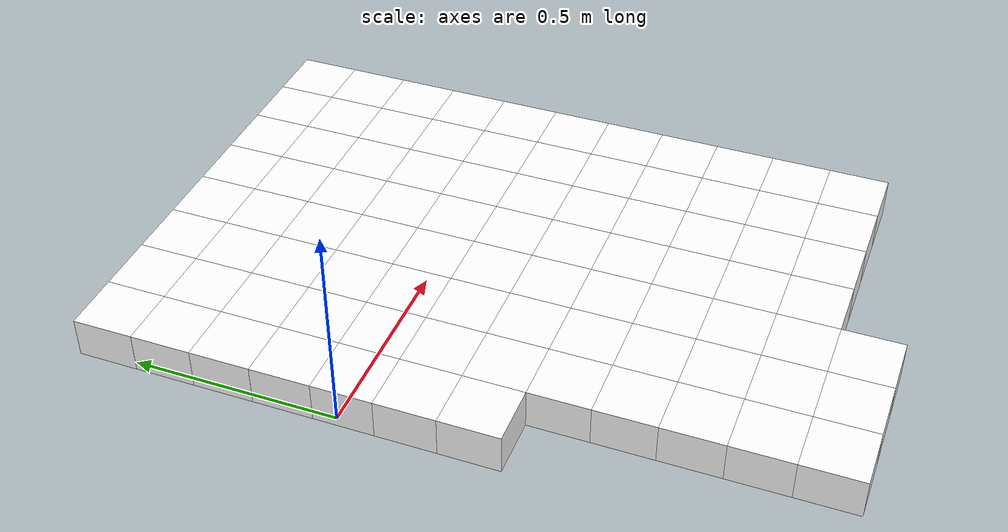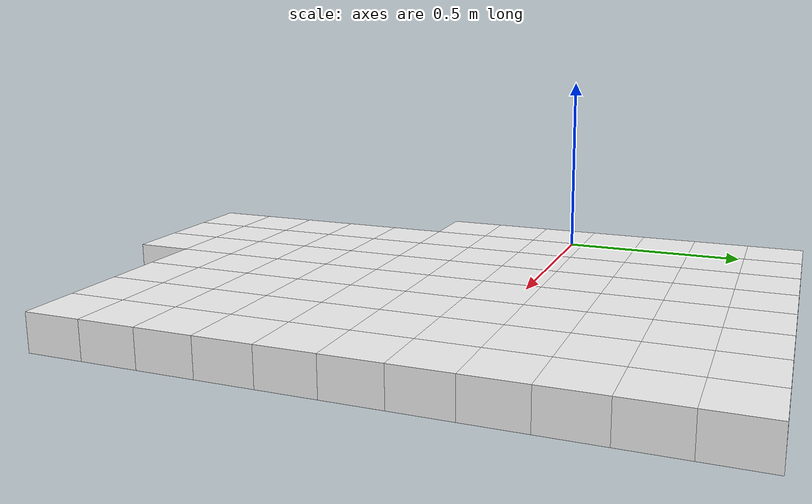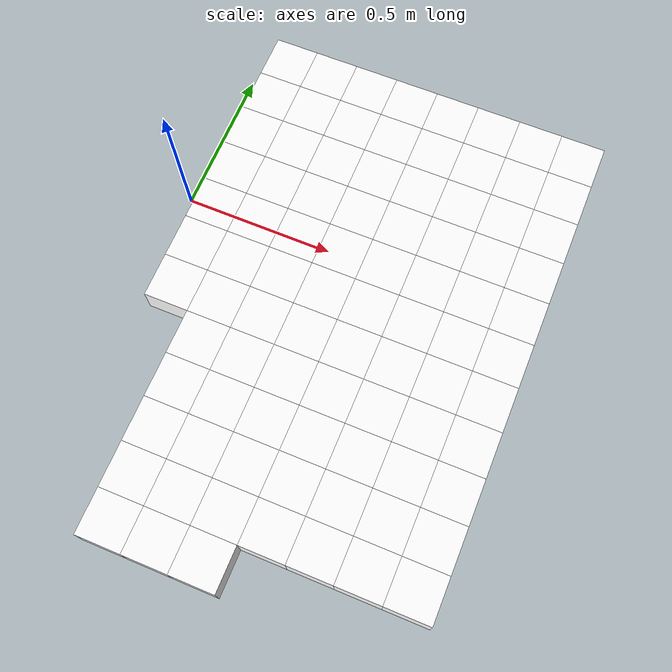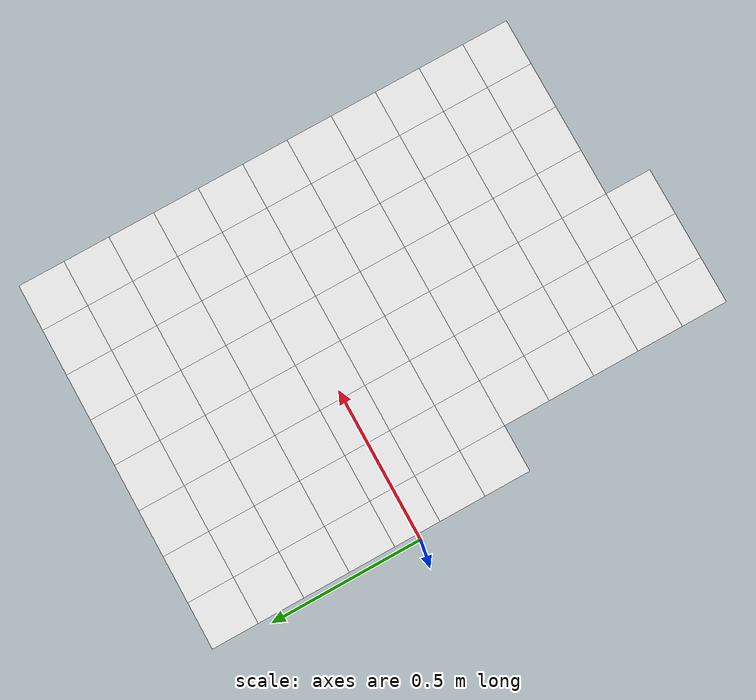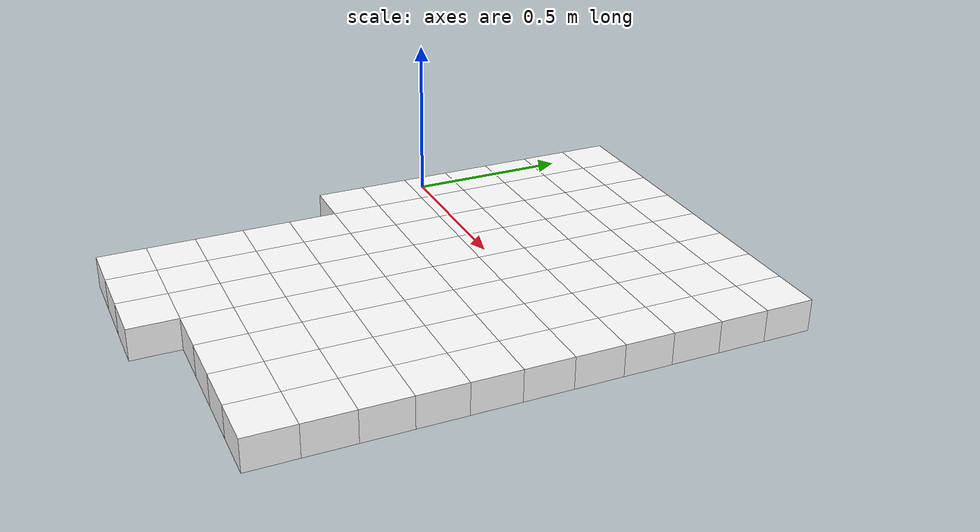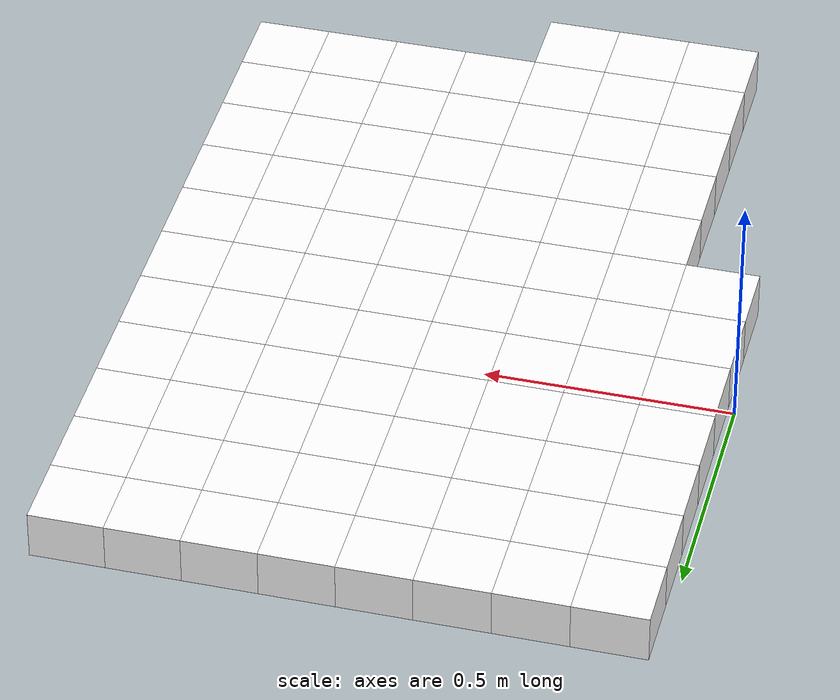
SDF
<sdf version="1.7">
 <world name="default">
  <include><uri>model://sun</uri></include>
  <model name="static_environment">
   <static>true</static>
   <link name="region_280">
    <pose>0.099999991686615 0.5998131411923977 0.0 0.0 0.0 4.7123</pose>
    <collision name="region_280_collision">
     <geometry><box><size>0.15 0.15 0.1</size></box></geometry>
     <surface><friction><ode><mu>1.0</mu><mu2>1.0</mu2></ode></friction></surface>
    </collision>
    <visual name="region_280_visual">
     <geometry><box><size>0.15 0.15 0.1</size></box></geometry>
     <material><ambient>1.0 1.0 1.0 1.0</ambient><diffuse>1.0 1.0 1.0 1.0</diffuse></material>
    </visual>
   </link>
   <link name="region_281">
    <pose>0.09998664462892926 0.4498131417862109 0.0 0.0 0.0 4.7123</pose>
    <collision name="region_281_collision">
     <geometry><box><size>0.15 0.15 0.1</size></box></geometry>
     <surface><friction><ode><mu>1.0</mu><mu2>1.0</mu2></ode></friction></surface>
    </collision>
    <visual name="region_281_visual">
     <geometry><box><size>0.15 0.15 0.1</size></box></geometry>
     <material><ambient>1.0 1.0 1.0 1.0</ambient><diffuse>1.0 1.0 1.0 1.0</diffuse></material>
    </visual>
   </link>
   <link name="region_282">
    <pose>0.09997329757124307 0.2998131423800241 0.0 0.0 0.0 4.7123</pose>
    <collision name="region_282_collision">
     <geometry><box><size>0.15 0.15 0.1</size></box></geometry>
     <surface><friction><ode><mu>1.0</mu><mu2>1.0</mu2></ode></friction></surface>
    </collision>
    <visual name="region_282_visual">
     <geometry><box><size>0.15 0.15 0.1</size></box></geometry>
     <material><ambient>1.0 1.0 1.0 1.0</ambient><diffuse>1.0 1.0 1.0 1.0</diffuse></material>
    </visual>
   </link>
   <link name="region_283">
    <pose>0.09995995051355733 0.1498131429738373 0.0 0.0 0.0 4.7123</pose>
    <collision name="region_283_collision">
     <geometry><box><size>0.15 0.15 0.1</size></box></geometry>
     <surface><friction><ode><mu>1.0</mu><mu2>1.0</mu2></ode></friction></surface>
    </collision>
    <visual name="region_283_visual">
     <geometry><box><size>0.15 0.15 0.1</size></box></geometry>
     <material><ambient>1.0 1.0 1.0 1.0</ambient><diffuse>1.0 1.0 1.0 1.0</diffuse></material>
    </visual>
   </link>
   <link name="region_284">
    <pose>0.09994660345587159 -0.00018685643234950255 0.0 0.0 0.0 4.7123</pose>
    <collision name="region_284_collision">
     <geometry><box><size>0.15 0.15 0.1</size></box></geometry>
     <surface><friction><ode><mu>1.0</mu><mu2>1.0</mu2></ode></friction></surface>
    </collision>
    <visual name="region_284_visual">
     <geometry><box><size>0.15 0.15 0.1</size></box></geometry>
     <material><ambient>1.0 1.0 1.0 1.0</ambient><diffuse>1.0 1.0 1.0 1.0</diffuse></material>
    </visual>
   </link>
   <link name="region_285">
    <pose>0.0999332563981854 -0.15018685583853641 0.0 0.0 0.0 4.7123</pose>
    <collision name="region_285_collision">
     <geometry><box><size>0.15 0.15 0.1</size></box></geometry>
     <surface><friction><ode><mu>1.0</mu><mu2>1.0</mu2></ode></friction></surface>
    </collision>
    <visual name="region_285_visual">
     <geometry><box><size>0.15 0.15 0.1</size></box></geometry>
     <material><ambient>1.0 1.0 1.0 1.0</ambient><diffuse>1.0 1.0 1.0 1.0</diffuse></material>
    </visual>
   </link>
   <link name="region_286">
    <pose>0.09991990934049966 -0.3001868552447232 0.0 0.0 0.0 4.7123</pose>
    <collision name="region_286_collision">
     <geometry><box><size>0.15 0.15 0.1</size></box></geometry>
     <surface><friction><ode><mu>1.0</mu><mu2>1.0</mu2></ode></friction></surface>
    </collision>
    <visual name="region_286_visual">
     <geometry><box><size>0.15 0.15 0.1</size></box></geometry>
     <material><ambient>1.0 1.0 1.0 1.0</ambient><diffuse>1.0 1.0 1.0 1.0</diffuse></material>
    </visual>
   </link>
   <link name="region_300">
    <pose>0.2499999910928019 0.5997997941347119 0.0 0.0 0.0 4.7123</pose>
    <collision name="region_300_collision">
     <geometry><box><size>0.15 0.15 0.1</size></box></geometry>
     <surface><friction><ode><mu>1.0</mu><mu2>1.0</mu2></ode></friction></surface>
    </collision>
    <visual name="region_300_visual">
     <geometry><box><size>0.15 0.15 0.1</size></box></geometry>
     <material><ambient>1.0 1.0 1.0 1.0</ambient><diffuse>1.0 1.0 1.0 1.0</diffuse></material>
    </visual>
   </link>
   <link name="region_301">
    <pose>0.24998664403511617 0.44979979472852505 0.0 0.0 0.0 4.7123</pose>
    <collision name="region_301_collision">
     <geometry><box><size>0.15 0.15 0.1</size></box></geometry>
     <surface><friction><ode><mu>1.0</mu><mu2>1.0</mu2></ode></friction></surface>
    </collision>
    <visual name="region_301_visual">
     <geometry><box><size>0.15 0.15 0.1</size></box></geometry>
     <material><ambient>1.0 1.0 1.0 1.0</ambient><diffuse>1.0 1.0 1.0 1.0</diffuse></material>
    </visual>
   </link>
   <link name="region_302">
    <pose>0.24997329697742998 0.2997997953223382 0.0 0.0 0.0 4.7123</pose>
    <collision name="region_302_collision">
     <geometry><box><size>0.15 0.15 0.1</size></box></geometry>
     <surface><friction><ode><mu>1.0</mu><mu2>1.0</mu2></ode></friction></surface>
    </collision>
    <visual name="region_302_visual">
     <geometry><box><size>0.15 0.15 0.1</size></box></geometry>
     <material><ambient>1.0 1.0 1.0 1.0</ambient><diffuse>1.0 1.0 1.0 1.0</diffuse></material>
    </visual>
   </link>
   <link name="region_303">
    <pose>0.24995994991974424 0.14979979591615145 0.0 0.0 0.0 4.7123</pose>
    <collision name="region_303_collision">
     <geometry><box><size>0.15 0.15 0.1</size></box></geometry>
     <surface><friction><ode><mu>1.0</mu><mu2>1.0</mu2></ode></friction></surface>
    </collision>
    <visual name="region_303_visual">
     <geometry><box><size>0.15 0.15 0.1</size></box></geometry>
     <material><ambient>1.0 1.0 1.0 1.0</ambient><diffuse>1.0 1.0 1.0 1.0</diffuse></material>
    </visual>
   </link>
   <link name="region_304">
    <pose>0.2499466028620585 -0.00020020349003546656 0.0 0.0 0.0 4.7123</pose>
    <collision name="region_304_collision">
     <geometry><box><size>0.15 0.15 0.1</size></box></geometry>
     <surface><friction><ode><mu>1.0</mu><mu2>1.0</mu2></ode></friction></surface>
    </collision>
    <visual name="region_304_visual">
     <geometry><box><size>0.15 0.15 0.1</size></box></geometry>
     <material><ambient>1.0 1.0 1.0 1.0</ambient><diffuse>1.0 1.0 1.0 1.0</diffuse></material>
    </visual>
   </link>
   <link name="region_305">
    <pose>0.2499332558043723 -0.15020020289622227 0.0 0.0 0.0 4.7123</pose>
    <collision name="region_305_collision">
     <geometry><box><size>0.15 0.15 0.1</size></box></geometry>
     <surface><friction><ode><mu>1.0</mu><mu2>1.0</mu2></ode></friction></surface>
    </collision>
    <visual name="region_305_visual">
     <geometry><box><size>0.15 0.15 0.1</size></box></geometry>
     <material><ambient>1.0 1.0 1.0 1.0</ambient><diffuse>1.0 1.0 1.0 1.0</diffuse></material>
    </visual>
   </link>
   <link name="region_306">
    <pose>0.24991990874668657 -0.30020020230240907 0.0 0.0 0.0 4.7123</pose>
    <collision name="region_306_collision">
     <geometry><box><size>0.15 0.15 0.1</size></box></geometry>
     <surface><friction><ode><mu>1.0</mu><mu2>1.0</mu2></ode></friction></surface>
    </collision>
    <visual name="region_306_visual">
     <geometry><box><size>0.15 0.15 0.1</size></box></geometry>
     <material><ambient>1.0 1.0 1.0 1.0</ambient><diffuse>1.0 1.0 1.0 1.0</diffuse></material>
    </visual>
   </link>
   <link name="region_307">
    <pose>0.24990656168900083 -0.45020020170859587 0.0 0.0 0.0 4.7123</pose>
    <collision name="region_307_collision">
     <geometry><box><size>0.15 0.15 0.1</size></box></geometry>
     <surface><friction><ode><mu>1.0</mu><mu2>1.0</mu2></ode></friction></surface>
    </collision>
    <visual name="region_307_visual">
     <geometry><box><size>0.15 0.15 0.1</size></box></geometry>
     <material><ambient>1.0 1.0 1.0 1.0</ambient><diffuse>1.0 1.0 1.0 1.0</diffuse></material>
    </visual>
   </link>
   <link name="region_308">
    <pose>0.24989321463131509 -0.6002002011147826 0.0 0.0 0.0 4.7123</pose>
    <collision name="region_308_collision">
     <geometry><box><size>0.15 0.15 0.1</size></box></geometry>
     <surface><friction><ode><mu>1.0</mu><mu2>1.0</mu2></ode></friction></surface>
    </collision>
    <visual name="region_308_visual">
     <geometry><box><size>0.15 0.15 0.1</size></box></geometry>
     <material><ambient>1.0 1.0 1.0 1.0</ambient><diffuse>1.0 1.0 1.0 1.0</diffuse></material>
    </visual>
   </link>
   <link name="region_309">
    <pose>0.2498798675736289 -0.7502002005209695 0.0 0.0 0.0 4.7123</pose>
    <collision name="region_309_collision">
     <geometry><box><size>0.15 0.15 0.1</size></box></geometry>
     <surface><friction><ode><mu>1.0</mu><mu2>1.0</mu2></ode></friction></surface>
    </collision>
    <visual name="region_309_visual">
     <geometry><box><size>0.15 0.15 0.1</size></box></geometry>
     <material><ambient>1.0 1.0 1.0 1.0</ambient><diffuse>1.0 1.0 1.0 1.0</diffuse></material>
    </visual>
   </link>
   <link name="region_310">
    <pose>0.24986652051594316 -0.9002001999271562 0.0 0.0 0.0 4.7123</pose>
    <collision name="region_310_collision">
     <geometry><box><size>0.15 0.15 0.1</size></box></geometry>
     <surface><friction><ode><mu>1.0</mu><mu2>1.0</mu2></ode></friction></surface>
    </collision>
    <visual name="region_310_visual">
     <geometry><box><size>0.15 0.15 0.1</size></box></geometry>
     <material><ambient>1.0 1.0 1.0 1.0</ambient><diffuse>1.0 1.0 1.0 1.0</diffuse></material>
    </visual>
   </link>
   <link name="region_311">
    <pose>0.24985317345825742 -1.050200199333343 0.0 0.0 0.0 4.7123</pose>
    <collision name="region_311_collision">
     <geometry><box><size>0.15 0.15 0.1</size></box></geometry>
     <surface><friction><ode><mu>1.0</mu><mu2>1.0</mu2></ode></friction></surface>
    </collision>
    <visual name="region_311_visual">
     <geometry><box><size>0.15 0.15 0.1</size></box></geometry>
     <material><ambient>1.0 1.0 1.0 1.0</ambient><diffuse>1.0 1.0 1.0 1.0</diffuse></material>
    </visual>
   </link>
   <link name="region_320">
    <pose>0.3999999904989884 0.599786447077026 0.0 0.0 0.0 4.7123</pose>
    <collision name="region_320_collision">
     <geometry><box><size>0.15 0.15 0.1</size></box></geometry>
     <surface><friction><ode><mu>1.0</mu><mu2>1.0</mu2></ode></friction></surface>
    </collision>
    <visual name="region_320_visual">
     <geometry><box><size>0.15 0.15 0.1</size></box></geometry>
     <material><ambient>1.0 1.0 1.0 1.0</ambient><diffuse>1.0 1.0 1.0 1.0</diffuse></material>
    </visual>
   </link>
   <link name="region_321">
    <pose>0.39998664344130264 0.44978644767083914 0.0 0.0 0.0 4.7123</pose>
    <collision name="region_321_collision">
     <geometry><box><size>0.15 0.15 0.1</size></box></geometry>
     <surface><friction><ode><mu>1.0</mu><mu2>1.0</mu2></ode></friction></surface>
    </collision>
    <visual name="region_321_visual">
     <geometry><box><size>0.15 0.15 0.1</size></box></geometry>
     <material><ambient>1.0 1.0 1.0 1.0</ambient><diffuse>1.0 1.0 1.0 1.0</diffuse></material>
    </visual>
   </link>
   <link name="region_322">
    <pose>0.39997329638361645 0.29978644826465234 0.0 0.0 0.0 4.7123</pose>
    <collision name="region_322_collision">
     <geometry><box><size>0.15 0.15 0.1</size></box></geometry>
     <surface><friction><ode><mu>1.0</mu><mu2>1.0</mu2></ode></friction></surface>
    </collision>
    <visual name="region_322_visual">
     <geometry><box><size>0.15 0.15 0.1</size></box></geometry>
     <material><ambient>1.0 1.0 1.0 1.0</ambient><diffuse>1.0 1.0 1.0 1.0</diffuse></material>
    </visual>
   </link>
   <link name="region_323">
    <pose>0.3999599493259307 0.14978644885846554 0.0 0.0 0.0 4.7123</pose>
    <collision name="region_323_collision">
     <geometry><box><size>0.15 0.15 0.1</size></box></geometry>
     <surface><friction><ode><mu>1.0</mu><mu2>1.0</mu2></ode></friction></surface>
    </collision>
    <visual name="region_323_visual">
     <geometry><box><size>0.15 0.15 0.1</size></box></geometry>
     <material><ambient>1.0 1.0 1.0 1.0</ambient><diffuse>1.0 1.0 1.0 1.0</diffuse></material>
    </visual>
   </link>
   <link name="region_324">
    <pose>0.39994660226824497 -0.00021355054772131954 0.0 0.0 0.0 4.7123</pose>
    <collision name="region_324_collision">
     <geometry><box><size>0.15 0.15 0.1</size></box></geometry>
     <surface><friction><ode><mu>1.0</mu><mu2>1.0</mu2></ode></friction></surface>
    </collision>
    <visual name="region_324_visual">
     <geometry><box><size>0.15 0.15 0.1</size></box></geometry>
     <material><ambient>1.0 1.0 1.0 1.0</ambient><diffuse>1.0 1.0 1.0 1.0</diffuse></material>
    </visual>
   </link>
   <link name="region_325">
    <pose>0.3999332552105588 -0.15021354995390812 0.0 0.0 0.0 4.7123</pose>
    <collision name="region_325_collision">
     <geometry><box><size>0.15 0.15 0.1</size></box></geometry>
     <surface><friction><ode><mu>1.0</mu><mu2>1.0</mu2></ode></friction></surface>
    </collision>
    <visual name="region_325_visual">
     <geometry><box><size>0.15 0.15 0.1</size></box></geometry>
     <material><ambient>1.0 1.0 1.0 1.0</ambient><diffuse>1.0 1.0 1.0 1.0</diffuse></material>
    </visual>
   </link>
   <link name="region_326">
    <pose>0.39991990815287304 -0.3002135493600949 0.0 0.0 0.0 4.7123</pose>
    <collision name="region_326_collision">
     <geometry><box><size>0.15 0.15 0.1</size></box></geometry>
     <surface><friction><ode><mu>1.0</mu><mu2>1.0</mu2></ode></friction></surface>
    </collision>
    <visual name="region_326_visual">
     <geometry><box><size>0.15 0.15 0.1</size></box></geometry>
     <material><ambient>1.0 1.0 1.0 1.0</ambient><diffuse>1.0 1.0 1.0 1.0</diffuse></material>
    </visual>
   </link>
   <link name="region_327">
    <pose>0.3999065610951873 -0.45021354876628183 0.0 0.0 0.0 4.7123</pose>
    <collision name="region_327_collision">
     <geometry><box><size>0.15 0.15 0.1</size></box></geometry>
     <surface><friction><ode><mu>1.0</mu><mu2>1.0</mu2></ode></friction></surface>
    </collision>
    <visual name="region_327_visual">
     <geometry><box><size>0.15 0.15 0.1</size></box></geometry>
     <material><ambient>1.0 1.0 1.0 1.0</ambient><diffuse>1.0 1.0 1.0 1.0</diffuse></material>
    </visual>
   </link>
   <link name="region_328">
    <pose>0.39989321403750155 -0.6002135481724685 0.0 0.0 0.0 4.7123</pose>
    <collision name="region_328_collision">
     <geometry><box><size>0.15 0.15 0.1</size></box></geometry>
     <surface><friction><ode><mu>1.0</mu><mu2>1.0</mu2></ode></friction></surface>
    </collision>
    <visual name="region_328_visual">
     <geometry><box><size>0.15 0.15 0.1</size></box></geometry>
     <material><ambient>1.0 1.0 1.0 1.0</ambient><diffuse>1.0 1.0 1.0 1.0</diffuse></material>
    </visual>
   </link>
   <link name="region_329">
    <pose>0.39987986697981537 -0.7502135475786552 0.0 0.0 0.0 4.7123</pose>
    <collision name="region_329_collision">
     <geometry><box><size>0.15 0.15 0.1</size></box></geometry>
     <surface><friction><ode><mu>1.0</mu><mu2>1.0</mu2></ode></friction></surface>
    </collision>
    <visual name="region_329_visual">
     <geometry><box><size>0.15 0.15 0.1</size></box></geometry>
     <material><ambient>1.0 1.0 1.0 1.0</ambient><diffuse>1.0 1.0 1.0 1.0</diffuse></material>
    </visual>
   </link>
   <link name="region_330">
    <pose>0.3998665199221296 -0.9002135469848419 0.0 0.0 0.0 4.7123</pose>
    <collision name="region_330_collision">
     <geometry><box><size>0.15 0.15 0.1</size></box></geometry>
     <surface><friction><ode><mu>1.0</mu><mu2>1.0</mu2></ode></friction></surface>
    </collision>
    <visual name="region_330_visual">
     <geometry><box><size>0.15 0.15 0.1</size></box></geometry>
     <material><ambient>1.0 1.0 1.0 1.0</ambient><diffuse>1.0 1.0 1.0 1.0</diffuse></material>
    </visual>
   </link>
   <link name="region_331">
    <pose>0.3998531728644439 -1.0502135463910287 0.0 0.0 0.0 4.7123</pose>
    <collision name="region_331_collision">
     <geometry><box><size>0.15 0.15 0.1</size></box></geometry>
     <surface><friction><ode><mu>1.0</mu><mu2>1.0</mu2></ode></friction></surface>
    </collision>
    <visual name="region_331_visual">
     <geometry><box><size>0.15 0.15 0.1</size></box></geometry>
     <material><ambient>1.0 1.0 1.0 1.0</ambient><diffuse>1.0 1.0 1.0 1.0</diffuse></material>
    </visual>
   </link>
   <link name="region_340">
    <pose>0.5499999899051753 0.59977310001934 0.0 0.0 0.0 4.7123</pose>
    <collision name="region_340_collision">
     <geometry><box><size>0.15 0.15 0.1</size></box></geometry>
     <surface><friction><ode><mu>1.0</mu><mu2>1.0</mu2></ode></friction></surface>
    </collision>
    <visual name="region_340_visual">
     <geometry><box><size>0.15 0.15 0.1</size></box></geometry>
     <material><ambient>1.0 1.0 1.0 1.0</ambient><diffuse>1.0 1.0 1.0 1.0</diffuse></material>
    </visual>
   </link>
   <link name="region_341">
    <pose>0.5499866428474895 0.44977310061315323 0.0 0.0 0.0 4.7123</pose>
    <collision name="region_341_collision">
     <geometry><box><size>0.15 0.15 0.1</size></box></geometry>
     <surface><friction><ode><mu>1.0</mu><mu2>1.0</mu2></ode></friction></surface>
    </collision>
    <visual name="region_341_visual">
     <geometry><box><size>0.15 0.15 0.1</size></box></geometry>
     <material><ambient>1.0 1.0 1.0 1.0</ambient><diffuse>1.0 1.0 1.0 1.0</diffuse></material>
    </visual>
   </link>
   <link name="region_342">
    <pose>0.5499732957898034 0.2997731012069665 0.0 0.0 0.0 4.7123</pose>
    <collision name="region_342_collision">
     <geometry><box><size>0.15 0.15 0.1</size></box></geometry>
     <surface><friction><ode><mu>1.0</mu><mu2>1.0</mu2></ode></friction></surface>
    </collision>
    <visual name="region_342_visual">
     <geometry><box><size>0.15 0.15 0.1</size></box></geometry>
     <material><ambient>1.0 1.0 1.0 1.0</ambient><diffuse>1.0 1.0 1.0 1.0</diffuse></material>
    </visual>
   </link>
   <link name="region_343">
    <pose>0.5499599487321176 0.14977310180077968 0.0 0.0 0.0 4.7123</pose>
    <collision name="region_343_collision">
     <geometry><box><size>0.15 0.15 0.1</size></box></geometry>
     <surface><friction><ode><mu>1.0</mu><mu2>1.0</mu2></ode></friction></surface>
    </collision>
    <visual name="region_343_visual">
     <geometry><box><size>0.15 0.15 0.1</size></box></geometry>
     <material><ambient>1.0 1.0 1.0 1.0</ambient><diffuse>1.0 1.0 1.0 1.0</diffuse></material>
    </visual>
   </link>
   <link name="region_344">
    <pose>0.5499466016744319 -0.00022689760540717252 0.0 0.0 0.0 4.7123</pose>
    <collision name="region_344_collision">
     <geometry><box><size>0.15 0.15 0.1</size></box></geometry>
     <surface><friction><ode><mu>1.0</mu><mu2>1.0</mu2></ode></friction></surface>
    </collision>
    <visual name="region_344_visual">
     <geometry><box><size>0.15 0.15 0.1</size></box></geometry>
     <material><ambient>1.0 1.0 1.0 1.0</ambient><diffuse>1.0 1.0 1.0 1.0</diffuse></material>
    </visual>
   </link>
   <link name="region_345">
    <pose>0.5499332546167457 -0.15022689701159397 0.0 0.0 0.0 4.7123</pose>
    <collision name="region_345_collision">
     <geometry><box><size>0.15 0.15 0.1</size></box></geometry>
     <surface><friction><ode><mu>1.0</mu><mu2>1.0</mu2></ode></friction></surface>
    </collision>
    <visual name="region_345_visual">
     <geometry><box><size>0.15 0.15 0.1</size></box></geometry>
     <material><ambient>1.0 1.0 1.0 1.0</ambient><diffuse>1.0 1.0 1.0 1.0</diffuse></material>
    </visual>
   </link>
   <link name="region_346">
    <pose>0.54991990755906 -0.3002268964177809 0.0 0.0 0.0 4.7123</pose>
    <collision name="region_346_collision">
     <geometry><box><size>0.15 0.15 0.1</size></box></geometry>
     <surface><friction><ode><mu>1.0</mu><mu2>1.0</mu2></ode></friction></surface>
    </collision>
    <visual name="region_346_visual">
     <geometry><box><size>0.15 0.15 0.1</size></box></geometry>
     <material><ambient>1.0 1.0 1.0 1.0</ambient><diffuse>1.0 1.0 1.0 1.0</diffuse></material>
    </visual>
   </link>
   <link name="region_347">
    <pose>0.5499065605013742 -0.4502268958239676 0.0 0.0 0.0 4.7123</pose>
    <collision name="region_347_collision">
     <geometry><box><size>0.15 0.15 0.1</size></box></geometry>
     <surface><friction><ode><mu>1.0</mu><mu2>1.0</mu2></ode></friction></surface>
    </collision>
    <visual name="region_347_visual">
     <geometry><box><size>0.15 0.15 0.1</size></box></geometry>
     <material><ambient>1.0 1.0 1.0 1.0</ambient><diffuse>1.0 1.0 1.0 1.0</diffuse></material>
    </visual>
   </link>
   <link name="region_348">
    <pose>0.5498932134436885 -0.6002268952301545 0.0 0.0 0.0 4.7123</pose>
    <collision name="region_348_collision">
     <geometry><box><size>0.15 0.15 0.1</size></box></geometry>
     <surface><friction><ode><mu>1.0</mu><mu2>1.0</mu2></ode></friction></surface>
    </collision>
    <visual name="region_348_visual">
     <geometry><box><size>0.15 0.15 0.1</size></box></geometry>
     <material><ambient>1.0 1.0 1.0 1.0</ambient><diffuse>1.0 1.0 1.0 1.0</diffuse></material>
    </visual>
   </link>
   <link name="region_349">
    <pose>0.5498798663860023 -0.7502268946363412 0.0 0.0 0.0 4.7123</pose>
    <collision name="region_349_collision">
     <geometry><box><size>0.15 0.15 0.1</size></box></geometry>
     <surface><friction><ode><mu>1.0</mu><mu2>1.0</mu2></ode></friction></surface>
    </collision>
    <visual name="region_349_visual">
     <geometry><box><size>0.15 0.15 0.1</size></box></geometry>
     <material><ambient>1.0 1.0 1.0 1.0</ambient><diffuse>1.0 1.0 1.0 1.0</diffuse></material>
    </visual>
   </link>
   <link name="region_350">
    <pose>0.5498665193283165 -0.9002268940425279 0.0 0.0 0.0 4.7123</pose>
    <collision name="region_350_collision">
     <geometry><box><size>0.15 0.15 0.1</size></box></geometry>
     <surface><friction><ode><mu>1.0</mu><mu2>1.0</mu2></ode></friction></surface>
    </collision>
    <visual name="region_350_visual">
     <geometry><box><size>0.15 0.15 0.1</size></box></geometry>
     <material><ambient>1.0 1.0 1.0 1.0</ambient><diffuse>1.0 1.0 1.0 1.0</diffuse></material>
    </visual>
   </link>
   <link name="region_351">
    <pose>0.5498531722706308 -1.0502268934487144 0.0 0.0 0.0 4.7123</pose>
    <collision name="region_351_collision">
     <geometry><box><size>0.15 0.15 0.1</size></box></geometry>
     <surface><friction><ode><mu>1.0</mu><mu2>1.0</mu2></ode></friction></surface>
    </collision>
    <visual name="region_351_visual">
     <geometry><box><size>0.15 0.15 0.1</size></box></geometry>
     <material><ambient>1.0 1.0 1.0 1.0</ambient><diffuse>1.0 1.0 1.0 1.0</diffuse></material>
    </visual>
   </link>
   <link name="region_360">
    <pose>0.6999999893113622 0.5997597529616542 0.0 0.0 0.0 4.7123</pose>
    <collision name="region_360_collision">
     <geometry><box><size>0.15 0.15 0.1</size></box></geometry>
     <surface><friction><ode><mu>1.0</mu><mu2>1.0</mu2></ode></friction></surface>
    </collision>
    <visual name="region_360_visual">
     <geometry><box><size>0.15 0.15 0.1</size></box></geometry>
     <material><ambient>1.0 1.0 1.0 1.0</ambient><diffuse>1.0 1.0 1.0 1.0</diffuse></material>
    </visual>
   </link>
   <link name="region_361">
    <pose>0.6999866422536765 0.4497597535554674 0.0 0.0 0.0 4.7123</pose>
    <collision name="region_361_collision">
     <geometry><box><size>0.15 0.15 0.1</size></box></geometry>
     <surface><friction><ode><mu>1.0</mu><mu2>1.0</mu2></ode></friction></surface>
    </collision>
    <visual name="region_361_visual">
     <geometry><box><size>0.15 0.15 0.1</size></box></geometry>
     <material><ambient>1.0 1.0 1.0 1.0</ambient><diffuse>1.0 1.0 1.0 1.0</diffuse></material>
    </visual>
   </link>
   <link name="region_362">
    <pose>0.6999732951959903 0.2997597541492806 0.0 0.0 0.0 4.7123</pose>
    <collision name="region_362_collision">
     <geometry><box><size>0.15 0.15 0.1</size></box></geometry>
     <surface><friction><ode><mu>1.0</mu><mu2>1.0</mu2></ode></friction></surface>
    </collision>
    <visual name="region_362_visual">
     <geometry><box><size>0.15 0.15 0.1</size></box></geometry>
     <material><ambient>1.0 1.0 1.0 1.0</ambient><diffuse>1.0 1.0 1.0 1.0</diffuse></material>
    </visual>
   </link>
   <link name="region_363">
    <pose>0.6999599481383045 0.14975975474309378 0.0 0.0 0.0 4.7123</pose>
    <collision name="region_363_collision">
     <geometry><box><size>0.15 0.15 0.1</size></box></geometry>
     <surface><friction><ode><mu>1.0</mu><mu2>1.0</mu2></ode></friction></surface>
    </collision>
    <visual name="region_363_visual">
     <geometry><box><size>0.15 0.15 0.1</size></box></geometry>
     <material><ambient>1.0 1.0 1.0 1.0</ambient><diffuse>1.0 1.0 1.0 1.0</diffuse></material>
    </visual>
   </link>
   <link name="region_364">
    <pose>0.6999466010806188 -0.0002402446630930255 0.0 0.0 0.0 4.7123</pose>
    <collision name="region_364_collision">
     <geometry><box><size>0.15 0.15 0.1</size></box></geometry>
     <surface><friction><ode><mu>1.0</mu><mu2>1.0</mu2></ode></friction></surface>
    </collision>
    <visual name="region_364_visual">
     <geometry><box><size>0.15 0.15 0.1</size></box></geometry>
     <material><ambient>1.0 1.0 1.0 1.0</ambient><diffuse>1.0 1.0 1.0 1.0</diffuse></material>
    </visual>
   </link>
   <link name="region_365">
    <pose>0.6999332540229326 -0.15024024406927983 0.0 0.0 0.0 4.7123</pose>
    <collision name="region_365_collision">
     <geometry><box><size>0.15 0.15 0.1</size></box></geometry>
     <surface><friction><ode><mu>1.0</mu><mu2>1.0</mu2></ode></friction></surface>
    </collision>
    <visual name="region_365_visual">
     <geometry><box><size>0.15 0.15 0.1</size></box></geometry>
     <material><ambient>1.0 1.0 1.0 1.0</ambient><diffuse>1.0 1.0 1.0 1.0</diffuse></material>
    </visual>
   </link>
   <link name="region_366">
    <pose>0.6999199069652469 -0.30024024347546674 0.0 0.0 0.0 4.7123</pose>
    <collision name="region_366_collision">
     <geometry><box><size>0.15 0.15 0.1</size></box></geometry>
     <surface><friction><ode><mu>1.0</mu><mu2>1.0</mu2></ode></friction></surface>
    </collision>
    <visual name="region_366_visual">
     <geometry><box><size>0.15 0.15 0.1</size></box></geometry>
     <material><ambient>1.0 1.0 1.0 1.0</ambient><diffuse>1.0 1.0 1.0 1.0</diffuse></material>
    </visual>
   </link>
   <link name="region_367">
    <pose>0.6999065599075611 -0.45024024288165354 0.0 0.0 0.0 4.7123</pose>
    <collision name="region_367_collision">
     <geometry><box><size>0.15 0.15 0.1</size></box></geometry>
     <surface><friction><ode><mu>1.0</mu><mu2>1.0</mu2></ode></friction></surface>
    </collision>
    <visual name="region_367_visual">
     <geometry><box><size>0.15 0.15 0.1</size></box></geometry>
     <material><ambient>1.0 1.0 1.0 1.0</ambient><diffuse>1.0 1.0 1.0 1.0</diffuse></material>
    </visual>
   </link>
   <link name="region_368">
    <pose>0.6998932128498754 -0.6002402422878402 0.0 0.0 0.0 4.7123</pose>
    <collision name="region_368_collision">
     <geometry><box><size>0.15 0.15 0.1</size></box></geometry>
     <surface><friction><ode><mu>1.0</mu><mu2>1.0</mu2></ode></friction></surface>
    </collision>
    <visual name="region_368_visual">
     <geometry><box><size>0.15 0.15 0.1</size></box></geometry>
     <material><ambient>1.0 1.0 1.0 1.0</ambient><diffuse>1.0 1.0 1.0 1.0</diffuse></material>
    </visual>
   </link>
   <link name="region_369">
    <pose>0.6998798657921892 -0.7502402416940269 0.0 0.0 0.0 4.7123</pose>
    <collision name="region_369_collision">
     <geometry><box><size>0.15 0.15 0.1</size></box></geometry>
     <surface><friction><ode><mu>1.0</mu><mu2>1.0</mu2></ode></friction></surface>
    </collision>
    <visual name="region_369_visual">
     <geometry><box><size>0.15 0.15 0.1</size></box></geometry>
     <material><ambient>1.0 1.0 1.0 1.0</ambient><diffuse>1.0 1.0 1.0 1.0</diffuse></material>
    </visual>
   </link>
   <link name="region_370">
    <pose>0.6998665187345035 -0.9002402411002138 0.0 0.0 0.0 4.7123</pose>
    <collision name="region_370_collision">
     <geometry><box><size>0.15 0.15 0.1</size></box></geometry>
     <surface><friction><ode><mu>1.0</mu><mu2>1.0</mu2></ode></friction></surface>
    </collision>
    <visual name="region_370_visual">
     <geometry><box><size>0.15 0.15 0.1</size></box></geometry>
     <material><ambient>1.0 1.0 1.0 1.0</ambient><diffuse>1.0 1.0 1.0 1.0</diffuse></material>
    </visual>
   </link>
   <link name="region_380">
    <pose>0.8499999887175487 0.5997464059039683 0.0 0.0 0.0 4.7123</pose>
    <collision name="region_380_collision">
     <geometry><box><size>0.15 0.15 0.1</size></box></geometry>
     <surface><friction><ode><mu>1.0</mu><mu2>1.0</mu2></ode></friction></surface>
    </collision>
    <visual name="region_380_visual">
     <geometry><box><size>0.15 0.15 0.1</size></box></geometry>
     <material><ambient>1.0 1.0 1.0 1.0</ambient><diffuse>1.0 1.0 1.0 1.0</diffuse></material>
    </visual>
   </link>
   <link name="region_381">
    <pose>0.8499866416598629 0.4497464064977815 0.0 0.0 0.0 4.7123</pose>
    <collision name="region_381_collision">
     <geometry><box><size>0.15 0.15 0.1</size></box></geometry>
     <surface><friction><ode><mu>1.0</mu><mu2>1.0</mu2></ode></friction></surface>
    </collision>
    <visual name="region_381_visual">
     <geometry><box><size>0.15 0.15 0.1</size></box></geometry>
     <material><ambient>1.0 1.0 1.0 1.0</ambient><diffuse>1.0 1.0 1.0 1.0</diffuse></material>
    </visual>
   </link>
   <link name="region_382">
    <pose>0.8499732946021767 0.2997464070915947 0.0 0.0 0.0 4.7123</pose>
    <collision name="region_382_collision">
     <geometry><box><size>0.15 0.15 0.1</size></box></geometry>
     <surface><friction><ode><mu>1.0</mu><mu2>1.0</mu2></ode></friction></surface>
    </collision>
    <visual name="region_382_visual">
     <geometry><box><size>0.15 0.15 0.1</size></box></geometry>
     <material><ambient>1.0 1.0 1.0 1.0</ambient><diffuse>1.0 1.0 1.0 1.0</diffuse></material>
    </visual>
   </link>
   <link name="region_383">
    <pose>0.849959947544491 0.14974640768540792 0.0 0.0 0.0 4.7123</pose>
    <collision name="region_383_collision">
     <geometry><box><size>0.15 0.15 0.1</size></box></geometry>
     <surface><friction><ode><mu>1.0</mu><mu2>1.0</mu2></ode></friction></surface>
    </collision>
    <visual name="region_383_visual">
     <geometry><box><size>0.15 0.15 0.1</size></box></geometry>
     <material><ambient>1.0 1.0 1.0 1.0</ambient><diffuse>1.0 1.0 1.0 1.0</diffuse></material>
    </visual>
   </link>
   <link name="region_384">
    <pose>0.8499466004868053 -0.0002535917207788785 0.0 0.0 0.0 4.7123</pose>
    <collision name="region_384_collision">
     <geometry><box><size>0.15 0.15 0.1</size></box></geometry>
     <surface><friction><ode><mu>1.0</mu><mu2>1.0</mu2></ode></friction></surface>
    </collision>
    <visual name="region_384_visual">
     <geometry><box><size>0.15 0.15 0.1</size></box></geometry>
     <material><ambient>1.0 1.0 1.0 1.0</ambient><diffuse>1.0 1.0 1.0 1.0</diffuse></material>
    </visual>
   </link>
   <link name="region_385">
    <pose>0.8499332534291191 -0.1502535911269658 0.0 0.0 0.0 4.7123</pose>
    <collision name="region_385_collision">
     <geometry><box><size>0.15 0.15 0.1</size></box></geometry>
     <surface><friction><ode><mu>1.0</mu><mu2>1.0</mu2></ode></friction></surface>
    </collision>
    <visual name="region_385_visual">
     <geometry><box><size>0.15 0.15 0.1</size></box></geometry>
     <material><ambient>1.0 1.0 1.0 1.0</ambient><diffuse>1.0 1.0 1.0 1.0</diffuse></material>
    </visual>
   </link>
   <link name="region_386">
    <pose>0.8499199063714333 -0.3002535905331526 0.0 0.0 0.0 4.7123</pose>
    <collision name="region_386_collision">
     <geometry><box><size>0.15 0.15 0.1</size></box></geometry>
     <surface><friction><ode><mu>1.0</mu><mu2>1.0</mu2></ode></friction></surface>
    </collision>
    <visual name="region_386_visual">
     <geometry><box><size>0.15 0.15 0.1</size></box></geometry>
     <material><ambient>1.0 1.0 1.0 1.0</ambient><diffuse>1.0 1.0 1.0 1.0</diffuse></material>
    </visual>
   </link>
   <link name="region_387">
    <pose>0.8499065593137476 -0.4502535899393395 0.0 0.0 0.0 4.7123</pose>
    <collision name="region_387_collision">
     <geometry><box><size>0.15 0.15 0.1</size></box></geometry>
     <surface><friction><ode><mu>1.0</mu><mu2>1.0</mu2></ode></friction></surface>
    </collision>
    <visual name="region_387_visual">
     <geometry><box><size>0.15 0.15 0.1</size></box></geometry>
     <material><ambient>1.0 1.0 1.0 1.0</ambient><diffuse>1.0 1.0 1.0 1.0</diffuse></material>
    </visual>
   </link>
   <link name="region_388">
    <pose>0.8498932122560618 -0.6002535893455262 0.0 0.0 0.0 4.7123</pose>
    <collision name="region_388_collision">
     <geometry><box><size>0.15 0.15 0.1</size></box></geometry>
     <surface><friction><ode><mu>1.0</mu><mu2>1.0</mu2></ode></friction></surface>
    </collision>
    <visual name="region_388_visual">
     <geometry><box><size>0.15 0.15 0.1</size></box></geometry>
     <material><ambient>1.0 1.0 1.0 1.0</ambient><diffuse>1.0 1.0 1.0 1.0</diffuse></material>
    </visual>
   </link>
   <link name="region_389">
    <pose>0.8498798651983757 -0.7502535887517129 0.0 0.0 0.0 4.7123</pose>
    <collision name="region_389_collision">
     <geometry><box><size>0.15 0.15 0.1</size></box></geometry>
     <surface><friction><ode><mu>1.0</mu><mu2>1.0</mu2></ode></friction></surface>
    </collision>
    <visual name="region_389_visual">
     <geometry><box><size>0.15 0.15 0.1</size></box></geometry>
     <material><ambient>1.0 1.0 1.0 1.0</ambient><diffuse>1.0 1.0 1.0 1.0</diffuse></material>
    </visual>
   </link>
   <link name="region_390">
    <pose>0.8498665181406899 -0.9002535881578996 0.0 0.0 0.0 4.7123</pose>
    <collision name="region_390_collision">
     <geometry><box><size>0.15 0.15 0.1</size></box></geometry>
     <surface><friction><ode><mu>1.0</mu><mu2>1.0</mu2></ode></friction></surface>
    </collision>
    <visual name="region_390_visual">
     <geometry><box><size>0.15 0.15 0.1</size></box></geometry>
     <material><ambient>1.0 1.0 1.0 1.0</ambient><diffuse>1.0 1.0 1.0 1.0</diffuse></material>
    </visual>
   </link>
   <link name="region_400">
    <pose>0.9999999881237356 0.5997330588462825 0.0 0.0 0.0 4.7123</pose>
    <collision name="region_400_collision">
     <geometry><box><size>0.15 0.15 0.1</size></box></geometry>
     <surface><friction><ode><mu>1.0</mu><mu2>1.0</mu2></ode></friction></surface>
    </collision>
    <visual name="region_400_visual">
     <geometry><box><size>0.15 0.15 0.1</size></box></geometry>
     <material><ambient>1.0 1.0 1.0 1.0</ambient><diffuse>1.0 1.0 1.0 1.0</diffuse></material>
    </visual>
   </link>
   <link name="region_401">
    <pose>0.9999866410660498 0.4497330594400957 0.0 0.0 0.0 4.7123</pose>
    <collision name="region_401_collision">
     <geometry><box><size>0.15 0.15 0.1</size></box></geometry>
     <surface><friction><ode><mu>1.0</mu><mu2>1.0</mu2></ode></friction></surface>
    </collision>
    <visual name="region_401_visual">
     <geometry><box><size>0.15 0.15 0.1</size></box></geometry>
     <material><ambient>1.0 1.0 1.0 1.0</ambient><diffuse>1.0 1.0 1.0 1.0</diffuse></material>
    </visual>
   </link>
   <link name="region_402">
    <pose>0.9999732940083637 0.2997330600339088 0.0 0.0 0.0 4.7123</pose>
    <collision name="region_402_collision">
     <geometry><box><size>0.15 0.15 0.1</size></box></geometry>
     <surface><friction><ode><mu>1.0</mu><mu2>1.0</mu2></ode></friction></surface>
    </collision>
    <visual name="region_402_visual">
     <geometry><box><size>0.15 0.15 0.1</size></box></geometry>
     <material><ambient>1.0 1.0 1.0 1.0</ambient><diffuse>1.0 1.0 1.0 1.0</diffuse></material>
    </visual>
   </link>
   <link name="region_403">
    <pose>0.9999599469506779 0.14973306062772207 0.0 0.0 0.0 4.7123</pose>
    <collision name="region_403_collision">
     <geometry><box><size>0.15 0.15 0.1</size></box></geometry>
     <surface><friction><ode><mu>1.0</mu><mu2>1.0</mu2></ode></friction></surface>
    </collision>
    <visual name="region_403_visual">
     <geometry><box><size>0.15 0.15 0.1</size></box></geometry>
     <material><ambient>1.0 1.0 1.0 1.0</ambient><diffuse>1.0 1.0 1.0 1.0</diffuse></material>
    </visual>
   </link>
   <link name="region_404">
    <pose>0.9999465998929922 -0.0002669387784648425 0.0 0.0 0.0 4.7123</pose>
    <collision name="region_404_collision">
     <geometry><box><size>0.15 0.15 0.1</size></box></geometry>
     <surface><friction><ode><mu>1.0</mu><mu2>1.0</mu2></ode></friction></surface>
    </collision>
    <visual name="region_404_visual">
     <geometry><box><size>0.15 0.15 0.1</size></box></geometry>
     <material><ambient>1.0 1.0 1.0 1.0</ambient><diffuse>1.0 1.0 1.0 1.0</diffuse></material>
    </visual>
   </link>
   <link name="region_405">
    <pose>0.999933252835306 -0.15026693818465164 0.0 0.0 0.0 4.7123</pose>
    <collision name="region_405_collision">
     <geometry><box><size>0.15 0.15 0.1</size></box></geometry>
     <surface><friction><ode><mu>1.0</mu><mu2>1.0</mu2></ode></friction></surface>
    </collision>
    <visual name="region_405_visual">
     <geometry><box><size>0.15 0.15 0.1</size></box></geometry>
     <material><ambient>1.0 1.0 1.0 1.0</ambient><diffuse>1.0 1.0 1.0 1.0</diffuse></material>
    </visual>
   </link>
   <link name="region_406">
    <pose>0.9999199057776202 -0.30026693759083845 0.0 0.0 0.0 4.7123</pose>
    <collision name="region_406_collision">
     <geometry><box><size>0.15 0.15 0.1</size></box></geometry>
     <surface><friction><ode><mu>1.0</mu><mu2>1.0</mu2></ode></friction></surface>
    </collision>
    <visual name="region_406_visual">
     <geometry><box><size>0.15 0.15 0.1</size></box></geometry>
     <material><ambient>1.0 1.0 1.0 1.0</ambient><diffuse>1.0 1.0 1.0 1.0</diffuse></material>
    </visual>
   </link>
   <link name="region_407">
    <pose>0.9999065587199345 -0.45026693699702525 0.0 0.0 0.0 4.7123</pose>
    <collision name="region_407_collision">
     <geometry><box><size>0.15 0.15 0.1</size></box></geometry>
     <surface><friction><ode><mu>1.0</mu><mu2>1.0</mu2></ode></friction></surface>
    </collision>
    <visual name="region_407_visual">
     <geometry><box><size>0.15 0.15 0.1</size></box></geometry>
     <material><ambient>1.0 1.0 1.0 1.0</ambient><diffuse>1.0 1.0 1.0 1.0</diffuse></material>
    </visual>
   </link>
   <link name="region_408">
    <pose>0.9998932116622488 -0.6002669364032119 0.0 0.0 0.0 4.7123</pose>
    <collision name="region_408_collision">
     <geometry><box><size>0.15 0.15 0.1</size></box></geometry>
     <surface><friction><ode><mu>1.0</mu><mu2>1.0</mu2></ode></friction></surface>
    </collision>
    <visual name="region_408_visual">
     <geometry><box><size>0.15 0.15 0.1</size></box></geometry>
     <material><ambient>1.0 1.0 1.0 1.0</ambient><diffuse>1.0 1.0 1.0 1.0</diffuse></material>
    </visual>
   </link>
   <link name="region_409">
    <pose>0.9998798646045626 -0.7502669358093988 0.0 0.0 0.0 4.7123</pose>
    <collision name="region_409_collision">
     <geometry><box><size>0.15 0.15 0.1</size></box></geometry>
     <surface><friction><ode><mu>1.0</mu><mu2>1.0</mu2></ode></friction></surface>
    </collision>
    <visual name="region_409_visual">
     <geometry><box><size>0.15 0.15 0.1</size></box></geometry>
     <material><ambient>1.0 1.0 1.0 1.0</ambient><diffuse>1.0 1.0 1.0 1.0</diffuse></material>
    </visual>
   </link>
   <link name="region_410">
    <pose>0.9998665175468768 -0.9002669352155855 0.0 0.0 0.0 4.7123</pose>
    <collision name="region_410_collision">
     <geometry><box><size>0.15 0.15 0.1</size></box></geometry>
     <surface><friction><ode><mu>1.0</mu><mu2>1.0</mu2></ode></friction></surface>
    </collision>
    <visual name="region_410_visual">
     <geometry><box><size>0.15 0.15 0.1</size></box></geometry>
     <material><ambient>1.0 1.0 1.0 1.0</ambient><diffuse>1.0 1.0 1.0 1.0</diffuse></material>
    </visual>
   </link>
   <link name="region_420">
    <pose>1.149999987529922 0.5997197117885966 0.0 0.0 0.0 4.7123</pose>
    <collision name="region_420_collision">
     <geometry><box><size>0.15 0.15 0.1</size></box></geometry>
     <surface><friction><ode><mu>1.0</mu><mu2>1.0</mu2></ode></friction></surface>
    </collision>
    <visual name="region_420_visual">
     <geometry><box><size>0.15 0.15 0.1</size></box></geometry>
     <material><ambient>1.0 1.0 1.0 1.0</ambient><diffuse>1.0 1.0 1.0 1.0</diffuse></material>
    </visual>
   </link>
   <link name="region_421">
    <pose>1.1499866404722363 0.44971971238240976 0.0 0.0 0.0 4.7123</pose>
    <collision name="region_421_collision">
     <geometry><box><size>0.15 0.15 0.1</size></box></geometry>
     <surface><friction><ode><mu>1.0</mu><mu2>1.0</mu2></ode></friction></surface>
    </collision>
    <visual name="region_421_visual">
     <geometry><box><size>0.15 0.15 0.1</size></box></geometry>
     <material><ambient>1.0 1.0 1.0 1.0</ambient><diffuse>1.0 1.0 1.0 1.0</diffuse></material>
    </visual>
   </link>
   <link name="region_422">
    <pose>1.1499732934145501 0.29971971297622296 0.0 0.0 0.0 4.7123</pose>
    <collision name="region_422_collision">
     <geometry><box><size>0.15 0.15 0.1</size></box></geometry>
     <surface><friction><ode><mu>1.0</mu><mu2>1.0</mu2></ode></friction></surface>
    </collision>
    <visual name="region_422_visual">
     <geometry><box><size>0.15 0.15 0.1</size></box></geometry>
     <material><ambient>1.0 1.0 1.0 1.0</ambient><diffuse>1.0 1.0 1.0 1.0</diffuse></material>
    </visual>
   </link>
   <link name="region_423">
    <pose>1.1499599463568644 0.14971971357003616 0.0 0.0 0.0 4.7123</pose>
    <collision name="region_423_collision">
     <geometry><box><size>0.15 0.15 0.1</size></box></geometry>
     <surface><friction><ode><mu>1.0</mu><mu2>1.0</mu2></ode></friction></surface>
    </collision>
    <visual name="region_423_visual">
     <geometry><box><size>0.15 0.15 0.1</size></box></geometry>
     <material><ambient>1.0 1.0 1.0 1.0</ambient><diffuse>1.0 1.0 1.0 1.0</diffuse></material>
    </visual>
   </link>
   <link name="region_424">
    <pose>1.1499465992991786 -0.00028028583615069547 0.0 0.0 0.0 4.7123</pose>
    <collision name="region_424_collision">
     <geometry><box><size>0.15 0.15 0.1</size></box></geometry>
     <surface><friction><ode><mu>1.0</mu><mu2>1.0</mu2></ode></friction></surface>
    </collision>
    <visual name="region_424_visual">
     <geometry><box><size>0.15 0.15 0.1</size></box></geometry>
     <material><ambient>1.0 1.0 1.0 1.0</ambient><diffuse>1.0 1.0 1.0 1.0</diffuse></material>
    </visual>
   </link>
   <link name="region_425">
    <pose>1.1499332522414925 -0.1502802852423375 0.0 0.0 0.0 4.7123</pose>
    <collision name="region_425_collision">
     <geometry><box><size>0.15 0.15 0.1</size></box></geometry>
     <surface><friction><ode><mu>1.0</mu><mu2>1.0</mu2></ode></friction></surface>
    </collision>
    <visual name="region_425_visual">
     <geometry><box><size>0.15 0.15 0.1</size></box></geometry>
     <material><ambient>1.0 1.0 1.0 1.0</ambient><diffuse>1.0 1.0 1.0 1.0</diffuse></material>
    </visual>
   </link>
   <link name="region_426">
    <pose>1.1499199051838067 -0.3002802846485243 0.0 0.0 0.0 4.7123</pose>
    <collision name="region_426_collision">
     <geometry><box><size>0.15 0.15 0.1</size></box></geometry>
     <surface><friction><ode><mu>1.0</mu><mu2>1.0</mu2></ode></friction></surface>
    </collision>
    <visual name="region_426_visual">
     <geometry><box><size>0.15 0.15 0.1</size></box></geometry>
     <material><ambient>1.0 1.0 1.0 1.0</ambient><diffuse>1.0 1.0 1.0 1.0</diffuse></material>
    </visual>
   </link>
   <link name="region_427">
    <pose>1.149906558126121 -0.4502802840547112 0.0 0.0 0.0 4.7123</pose>
    <collision name="region_427_collision">
     <geometry><box><size>0.15 0.15 0.1</size></box></geometry>
     <surface><friction><ode><mu>1.0</mu><mu2>1.0</mu2></ode></friction></surface>
    </collision>
    <visual name="region_427_visual">
     <geometry><box><size>0.15 0.15 0.1</size></box></geometry>
     <material><ambient>1.0 1.0 1.0 1.0</ambient><diffuse>1.0 1.0 1.0 1.0</diffuse></material>
    </visual>
   </link>
   <link name="region_428">
    <pose>1.1498932110684352 -0.6002802834608979 0.0 0.0 0.0 4.7123</pose>
    <collision name="region_428_collision">
     <geometry><box><size>0.15 0.15 0.1</size></box></geometry>
     <surface><friction><ode><mu>1.0</mu><mu2>1.0</mu2></ode></friction></surface>
    </collision>
    <visual name="region_428_visual">
     <geometry><box><size>0.15 0.15 0.1</size></box></geometry>
     <material><ambient>1.0 1.0 1.0 1.0</ambient><diffuse>1.0 1.0 1.0 1.0</diffuse></material>
    </visual>
   </link>
   <link name="region_429">
    <pose>1.149879864010749 -0.7502802828670846 0.0 0.0 0.0 4.7123</pose>
    <collision name="region_429_collision">
     <geometry><box><size>0.15 0.15 0.1</size></box></geometry>
     <surface><friction><ode><mu>1.0</mu><mu2>1.0</mu2></ode></friction></surface>
    </collision>
    <visual name="region_429_visual">
     <geometry><box><size>0.15 0.15 0.1</size></box></geometry>
     <material><ambient>1.0 1.0 1.0 1.0</ambient><diffuse>1.0 1.0 1.0 1.0</diffuse></material>
    </visual>
   </link>
   <link name="region_430">
    <pose>1.1498665169530633 -0.9002802822732713 0.0 0.0 0.0 4.7123</pose>
    <collision name="region_430_collision">
     <geometry><box><size>0.15 0.15 0.1</size></box></geometry>
     <surface><friction><ode><mu>1.0</mu><mu2>1.0</mu2></ode></friction></surface>
    </collision>
    <visual name="region_430_visual">
     <geometry><box><size>0.15 0.15 0.1</size></box></geometry>
     <material><ambient>1.0 1.0 1.0 1.0</ambient><diffuse>1.0 1.0 1.0 1.0</diffuse></material>
    </visual>
   </link>
  </model>
 </world>
</sdf>
